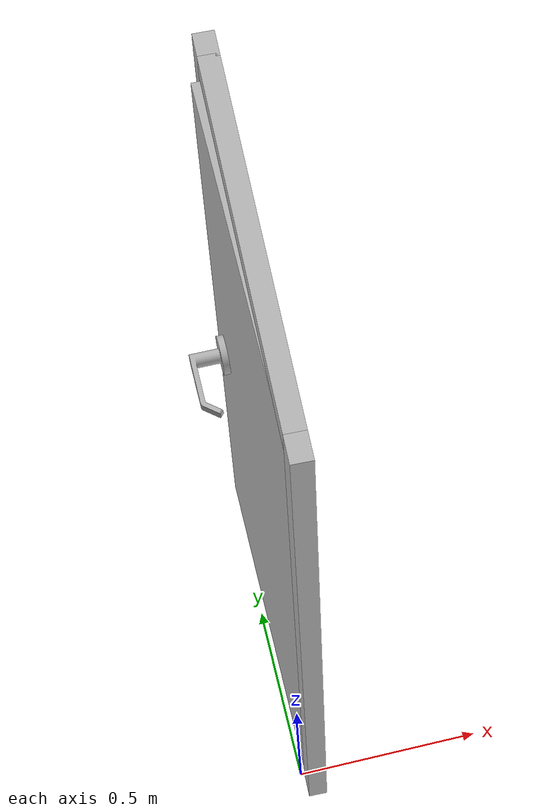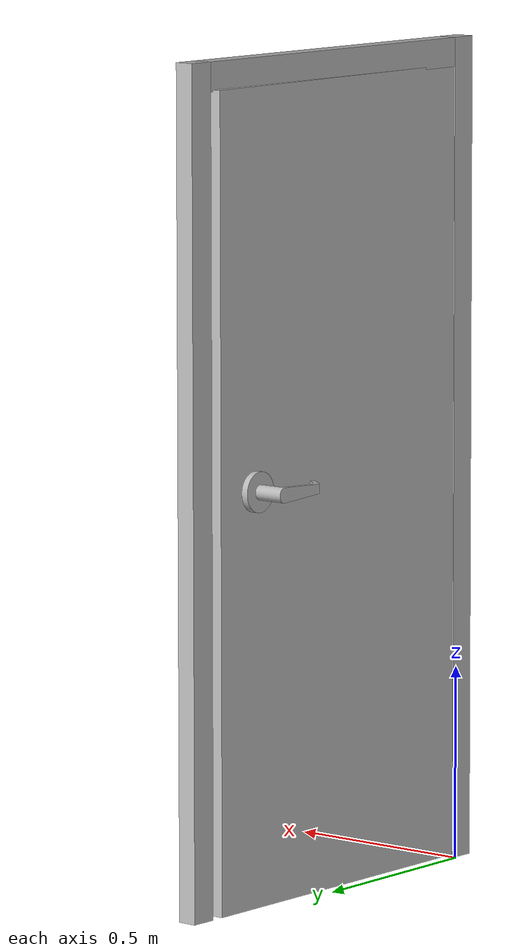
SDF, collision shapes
<?xml version='1.0'?>
<sdf version='1.6'>
  <model name='hinged_door_2'>
    <link name='frame'>
      <pose frame=''>0.06 -0.0005 0 0 0 -0.02676</pose>
      <inertial>
        <inertia>
          <ixx>1</ixx>
          <ixy>0</ixy>
          <ixz>0</ixz>
          <iyy>1</iyy>
          <iyz>0</iyz>
          <izz>1</izz>
        </inertia>
        <mass>1</mass>
      </inertial>
      <self_collide>0</self_collide>
      <kinematic>0</kinematic>
      <visual name='visual'>
        <pose frame=''>0 -0.06858 0 0 -0 0</pose>
        <geometry>
          <mesh>
            <uri>model://hinged_door/meshes/frame.dae</uri>
          </mesh>
        </geometry>
        <cast_shadows>1</cast_shadows>
        <transparency>0</transparency>
      </visual>
      <collision name='collision_1'>
        <laser_retro>0</laser_retro>
        <max_contacts>10</max_contacts>
        <pose frame=''>-0.025145 -0.03429 1.0541 0 -0 0</pose>
        <geometry>
          <box>
            <size>0.05029 0.06858 2.1082</size>
          </box>
        </geometry>
        <surface>
          <friction>
            <ode>
              <mu>1</mu>
              <mu2>1</mu2>
              <fdir1>0 0 0</fdir1>
              <slip1>0</slip1>
              <slip2>0</slip2>
            </ode>
            <torsional>
              <coefficient>1</coefficient>
              <patch_radius>0</patch_radius>
              <surface_radius>0</surface_radius>
              <use_patch_radius>1</use_patch_radius>
              <ode>
                <slip>0</slip>
              </ode>
            </torsional>
          </friction>
          <bounce>
            <restitution_coefficient>0</restitution_coefficient>
            <threshold>1e+06</threshold>
          </bounce>
          <contact>
            <collide_without_contact>0</collide_without_contact>
            <collide_without_contact_bitmask>1</collide_without_contact_bitmask>
            <collide_bitmask>1</collide_bitmask>
            <ode>
              <soft_cfm>0</soft_cfm>
              <soft_erp>0.2</soft_erp>
              <kp>1e+13</kp>
              <kd>1</kd>
              <max_vel>0.01</max_vel>
              <min_depth>0</min_depth>
            </ode>
            <bullet>
              <split_impulse>1</split_impulse>
              <split_impulse_penetration_threshold>-0.01</split_impulse_penetration_threshold>
              <soft_cfm>0</soft_cfm>
              <soft_erp>0.2</soft_erp>
              <kp>1e+13</kp>
              <kd>1</kd>
            </bullet>
          </contact>
        </surface>
      </collision>
      <collision name='collision_2'>
        <laser_retro>0</laser_retro>
        <max_contacts>10</max_contacts>
        <pose frame=''>-0.025145 0.95631 1.0541 0 -0 0</pose>
        <geometry>
          <box>
            <size>0.05029 0.06858 2.1082</size>
          </box>
        </geometry>
        <surface>
          <friction>
            <ode>
              <mu>1</mu>
              <mu2>1</mu2>
              <fdir1>0 0 0</fdir1>
              <slip1>0</slip1>
              <slip2>0</slip2>
            </ode>
            <torsional>
              <coefficient>1</coefficient>
              <patch_radius>0</patch_radius>
              <surface_radius>0</surface_radius>
              <use_patch_radius>1</use_patch_radius>
              <ode>
                <slip>0</slip>
              </ode>
            </torsional>
          </friction>
          <bounce>
            <restitution_coefficient>0</restitution_coefficient>
            <threshold>1e+06</threshold>
          </bounce>
          <contact>
            <collide_without_contact>0</collide_without_contact>
            <collide_without_contact_bitmask>1</collide_without_contact_bitmask>
            <collide_bitmask>1</collide_bitmask>
            <ode>
              <soft_cfm>0</soft_cfm>
              <soft_erp>0.2</soft_erp>
              <kp>1e+13</kp>
              <kd>1</kd>
              <max_vel>0.01</max_vel>
              <min_depth>0</min_depth>
            </ode>
            <bullet>
              <split_impulse>1</split_impulse>
              <split_impulse_penetration_threshold>-0.01</split_impulse_penetration_threshold>
              <soft_cfm>0</soft_cfm>
              <soft_erp>0.2</soft_erp>
              <kp>1e+13</kp>
              <kd>1</kd>
            </bullet>
          </contact>
        </surface>
      </collision>
      <collision name='collision_3'>
        <laser_retro>0</laser_retro>
        <max_contacts>10</max_contacts>
        <pose frame=''>-0.025145 0.46482 2.07137 0 -0 0</pose>
        <geometry>
          <box>
            <size>0.05029 0.92964 0.07366</size>
          </box>
        </geometry>
        <surface>
          <friction>
            <ode>
              <mu>1</mu>
              <mu2>1</mu2>
              <fdir1>0 0 0</fdir1>
              <slip1>0</slip1>
              <slip2>0</slip2>
            </ode>
            <torsional>
              <coefficient>1</coefficient>
              <patch_radius>0</patch_radius>
              <surface_radius>0</surface_radius>
              <use_patch_radius>1</use_patch_radius>
              <ode>
                <slip>0</slip>
              </ode>
            </torsional>
          </friction>
          <bounce>
            <restitution_coefficient>0</restitution_coefficient>
            <threshold>1e+06</threshold>
          </bounce>
          <contact>
            <collide_without_contact>0</collide_without_contact>
            <collide_without_contact_bitmask>1</collide_without_contact_bitmask>
            <collide_bitmask>1</collide_bitmask>
            <ode>
              <soft_cfm>0</soft_cfm>
              <soft_erp>0.2</soft_erp>
              <kp>1e+13</kp>
              <kd>1</kd>
              <max_vel>0.01</max_vel>
              <min_depth>0</min_depth>
            </ode>
            <bullet>
              <split_impulse>1</split_impulse>
              <split_impulse_penetration_threshold>-0.01</split_impulse_penetration_threshold>
              <soft_cfm>0</soft_cfm>
              <soft_erp>0.2</soft_erp>
              <kp>1e+13</kp>
              <kd>1</kd>
            </bullet>
          </contact>
        </surface>
      </collision>
    </link>
    <link name='door'>
      <pose frame=''>0 0 2.04 3.14159 -0 1.57</pose>
      <inertial>
        <mass>41.3256</mass>
        <pose frame=''>0.4569 0.0349 1.016 0 -0 0</pose>
        <inertia>
          <ixx>14.2053</ixx>
          <ixy>0.0004</ixy>
          <ixz>0</ixz>
          <iyy>17.1997</iyy>
          <iyz>0</iyz>
          <izz>3.0298</izz>
        </inertia>
      </inertial>
      <self_collide>0</self_collide>
      <kinematic>0</kinematic>
      <visual name='visual'>
        <pose frame=''>0 -0.06858 0 0 -0 0</pose>
        <geometry>
          <mesh>
            <uri>model://hinged_door/meshes/door.dae</uri>
          </mesh>
        </geometry>
        <cast_shadows>1</cast_shadows>
        <transparency>0</transparency>
      </visual>
      <collision name='collision'>
        <laser_retro>0</laser_retro>
        <max_contacts>10</max_contacts>
        <pose frame=''>0.4569 0.0349 1.016 0 -0 0</pose>
        <geometry>
          <box>
            <size>0.9144 0.04445 2.032</size>
          </box>
        </geometry>
        <surface>
          <friction>
            <ode>
              <mu>1</mu>
              <mu2>1</mu2>
              <fdir1>0 0 0</fdir1>
              <slip1>0</slip1>
              <slip2>0</slip2>
            </ode>
            <torsional>
              <coefficient>1</coefficient>
              <patch_radius>0</patch_radius>
              <surface_radius>0</surface_radius>
              <use_patch_radius>1</use_patch_radius>
              <ode>
                <slip>0</slip>
              </ode>
            </torsional>
          </friction>
          <bounce>
            <restitution_coefficient>0</restitution_coefficient>
            <threshold>1e+06</threshold>
          </bounce>
          <contact>
            <collide_without_contact>0</collide_without_contact>
            <collide_without_contact_bitmask>1</collide_without_contact_bitmask>
            <collide_bitmask>1</collide_bitmask>
            <ode>
              <soft_cfm>0</soft_cfm>
              <soft_erp>0.2</soft_erp>
              <kp>1e+13</kp>
              <kd>1</kd>
              <max_vel>0.01</max_vel>
              <min_depth>0</min_depth>
            </ode>
            <bullet>
              <split_impulse>1</split_impulse>
              <split_impulse_penetration_threshold>-0.01</split_impulse_penetration_threshold>
              <soft_cfm>0</soft_cfm>
              <soft_erp>0.2</soft_erp>
              <kp>1e+13</kp>
              <kd>1</kd>
            </bullet>
          </contact>
        </surface>
      </collision>
    </link>
    <link name='handles'>
      <pose frame=''>-0 0.8 1.05 -3.14159 0.001593 -1.57159</pose>
      <inertial>
        <inertia>
          <ixx>1</ixx>
          <ixy>0</ixy>
          <ixz>0</ixz>
          <iyy>1</iyy>
          <iyz>0</iyz>
          <izz>1</izz>
        </inertia>
        <mass>1</mass>
      </inertial>
      <self_collide>0</self_collide>
      <kinematic>0</kinematic>
      <visual name='handle1_visual'>
        <pose frame=''>0.015 -0.015 0 -1.57 0 0</pose>
        <geometry>
          <mesh>
            <uri>model://door_handle/meshes/handle.dae</uri>
          </mesh>
        </geometry>
        <cast_shadows>1</cast_shadows>
        <transparency>0</transparency>
      </visual>
      <visual name='handle2_visual'>
        <pose frame=''>0.015 -0.055 0 1.57 -0 0</pose>
        <geometry>
          <mesh>
            <uri>model://door_handle/meshes/handle.dae</uri>
          </mesh>
        </geometry>
        <cast_shadows>1</cast_shadows>
        <transparency>0</transparency>
      </visual>
      <collision name='handle1_collision'>
        <laser_retro>0</laser_retro>
        <max_contacts>10</max_contacts>
        <pose frame=''>0.015 -0.015 0 -1.57 0 0</pose>
        <geometry>
          <mesh>
            <uri>/home/s-amani/.gazebo/models/door_handle/meshes/handle.dae</uri>
          </mesh>
        </geometry>
        <surface>
          <friction>
            <ode>
              <mu>1</mu>
              <mu2>1</mu2>
              <fdir1>0 0 0</fdir1>
              <slip1>0</slip1>
              <slip2>0</slip2>
            </ode>
            <torsional>
              <coefficient>1</coefficient>
              <patch_radius>0</patch_radius>
              <surface_radius>0</surface_radius>
              <use_patch_radius>1</use_patch_radius>
              <ode>
                <slip>0</slip>
              </ode>
            </torsional>
          </friction>
          <bounce>
            <restitution_coefficient>0</restitution_coefficient>
            <threshold>1e+06</threshold>
          </bounce>
          <contact>
            <collide_without_contact>0</collide_without_contact>
            <collide_without_contact_bitmask>1</collide_without_contact_bitmask>
            <collide_bitmask>1</collide_bitmask>
            <ode>
              <soft_cfm>0</soft_cfm>
              <soft_erp>0.2</soft_erp>
              <kp>1e+13</kp>
              <kd>1</kd>
              <max_vel>0.01</max_vel>
              <min_depth>0</min_depth>
            </ode>
            <bullet>
              <split_impulse>1</split_impulse>
              <split_impulse_penetration_threshold>-0.01</split_impulse_penetration_threshold>
              <soft_cfm>0</soft_cfm>
              <soft_erp>0.2</soft_erp>
              <kp>1e+13</kp>
              <kd>1</kd>
            </bullet>
          </contact>
        </surface>
      </collision>
      <collision name='handle2_collision'>
        <laser_retro>0</laser_retro>
        <max_contacts>10</max_contacts>
        <pose frame=''>0.015 -0.055 0 1.57 -0 0</pose>
        <geometry>
          <mesh>
            <uri>/home/s-amani/.gazebo/models/door_handle/meshes/handle.dae</uri>
          </mesh>
        </geometry>
        <surface>
          <friction>
            <ode>
              <mu>1</mu>
              <mu2>1</mu2>
              <fdir1>0 0 0</fdir1>
              <slip1>0</slip1>
              <slip2>0</slip2>
            </ode>
            <torsional>
              <coefficient>1</coefficient>
              <patch_radius>0</patch_radius>
              <surface_radius>0</surface_radius>
              <use_patch_radius>1</use_patch_radius>
              <ode>
                <slip>0</slip>
              </ode>
            </torsional>
          </friction>
          <bounce>
            <restitution_coefficient>0</restitution_coefficient>
            <threshold>1e+06</threshold>
          </bounce>
          <contact>
            <collide_without_contact>0</collide_without_contact>
            <collide_without_contact_bitmask>1</collide_without_contact_bitmask>
            <collide_bitmask>1</collide_bitmask>
            <ode>
              <soft_cfm>0</soft_cfm>
              <soft_erp>0.2</soft_erp>
              <kp>1e+13</kp>
              <kd>1</kd>
              <max_vel>0.01</max_vel>
              <min_depth>0</min_depth>
            </ode>
            <bullet>
              <split_impulse>1</split_impulse>
              <split_impulse_penetration_threshold>-0.01</split_impulse_penetration_threshold>
              <soft_cfm>0</soft_cfm>
              <soft_erp>0.2</soft_erp>
              <kp>1e+13</kp>
              <kd>1</kd>
            </bullet>
          </contact>
        </surface>
      </collision>
    </link>
    <joint name='handle' type='revolute'>
      <parent>door</parent>
      <child>handles</child>
      <pose frame=''>0.015 0 0 0 -0 0</pose>
      <axis>
        <xyz>1 0 0</xyz>
        <use_parent_model_frame>1</use_parent_model_frame>
        <limit>
          <lower>0</lower>
          <upper>1.58</upper>
          <effort>-1</effort>
          <velocity>-1</velocity>
        </limit>
        <dynamics>
          <spring_reference>0</spring_reference>
          <spring_stiffness>0</spring_stiffness>
          <damping>1</damping>
          <friction>10</friction>
        </dynamics>
      </axis>
      <physics>
        <ode>
          <limit>
            <cfm>0</cfm>
            <erp>0.2</erp>
          </limit>
          <suspension>
            <cfm>0</cfm>
            <erp>0.2</erp>
          </suspension>
        </ode>
      </physics>
    </joint>
    <joint name='hinge' type='revolute'>
      <parent>frame</parent>
      <child>door</child>
      <pose frame=''>0 0 0 0 -0 0</pose>
      <axis>
        <xyz>0 0 1</xyz>
        <use_parent_model_frame>1</use_parent_model_frame>
        <limit>
          <lower>0</lower>
          <upper>1.58</upper>
          <effort>-1</effort>
          <velocity>-1</velocity>
        </limit>
        <dynamics>
          <spring_reference>0</spring_reference>
          <spring_stiffness>0</spring_stiffness>
          <damping>1</damping>
          <friction>1</friction>
        </dynamics>
      </axis>
      <physics>
        <ode>
          <limit>
            <cfm>0</cfm>
            <erp>0.2</erp>
          </limit>
          <suspension>
            <cfm>0</cfm>
            <erp>0.2</erp>
          </suspension>
        </ode>
      </physics>
    </joint>
    <static>0</static>
    <allow_auto_disable>1</allow_auto_disable>
  </model>
</sdf>
